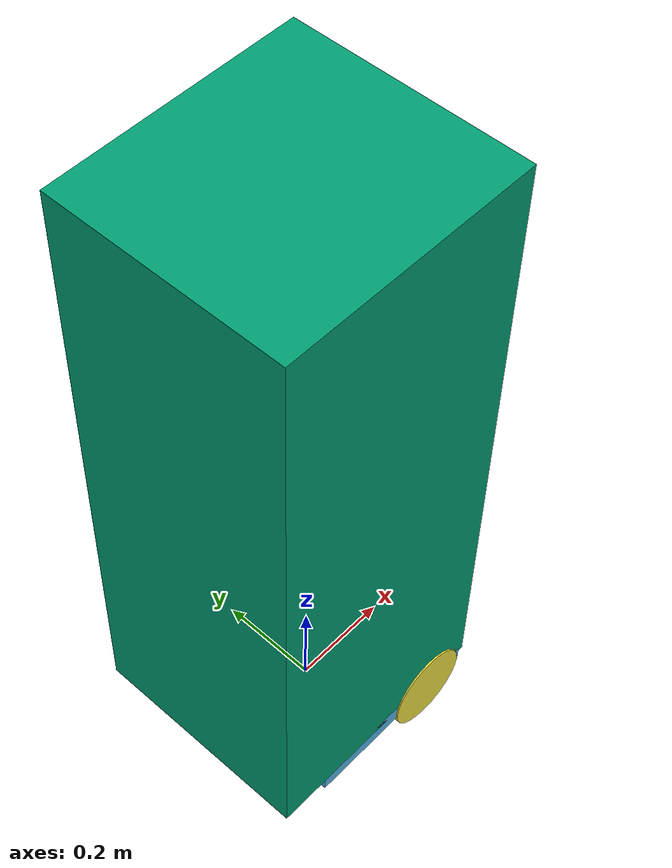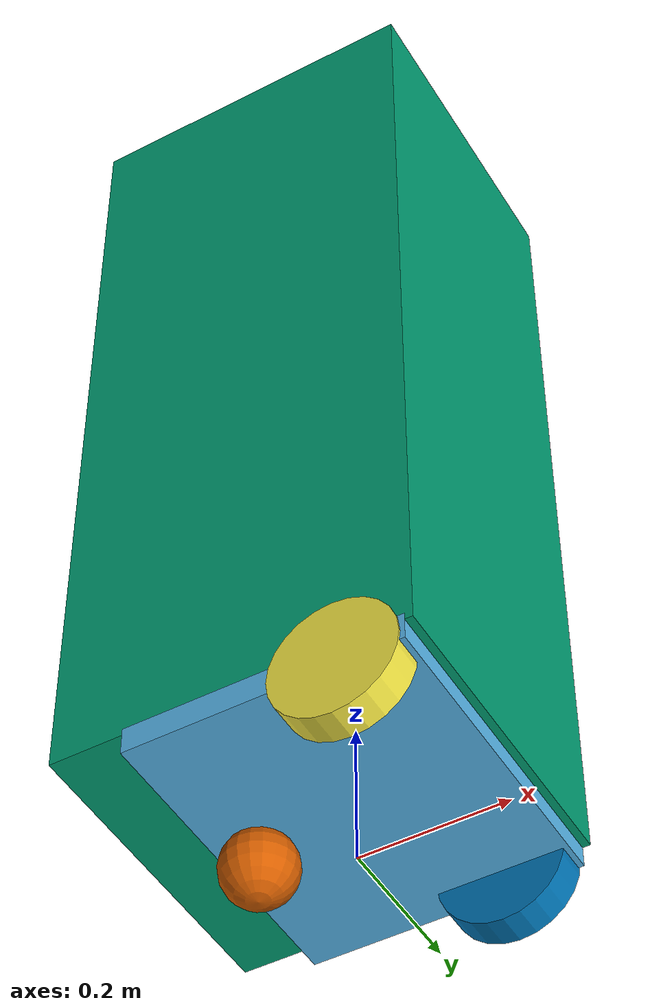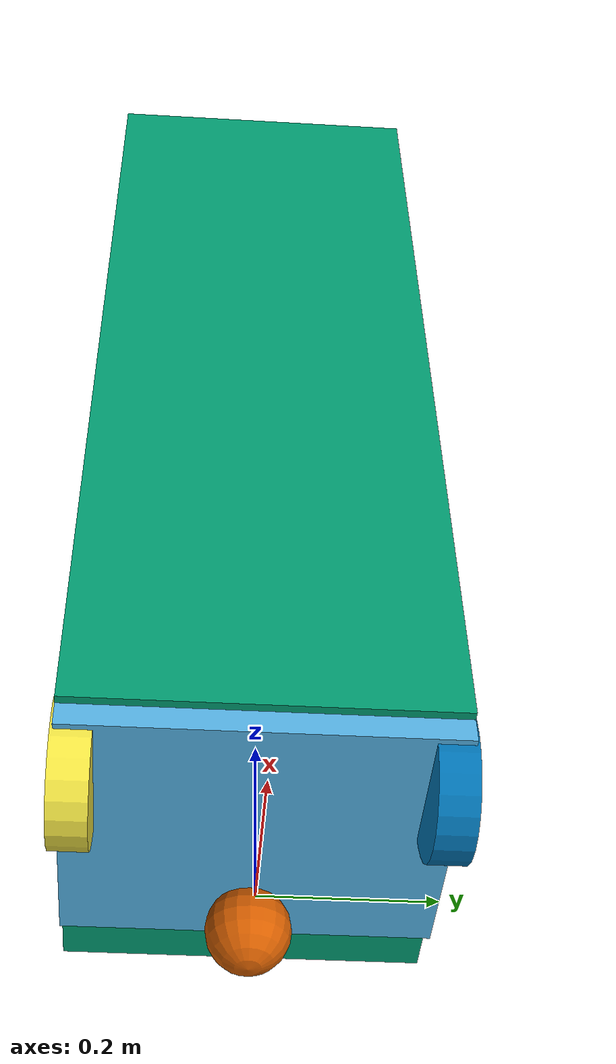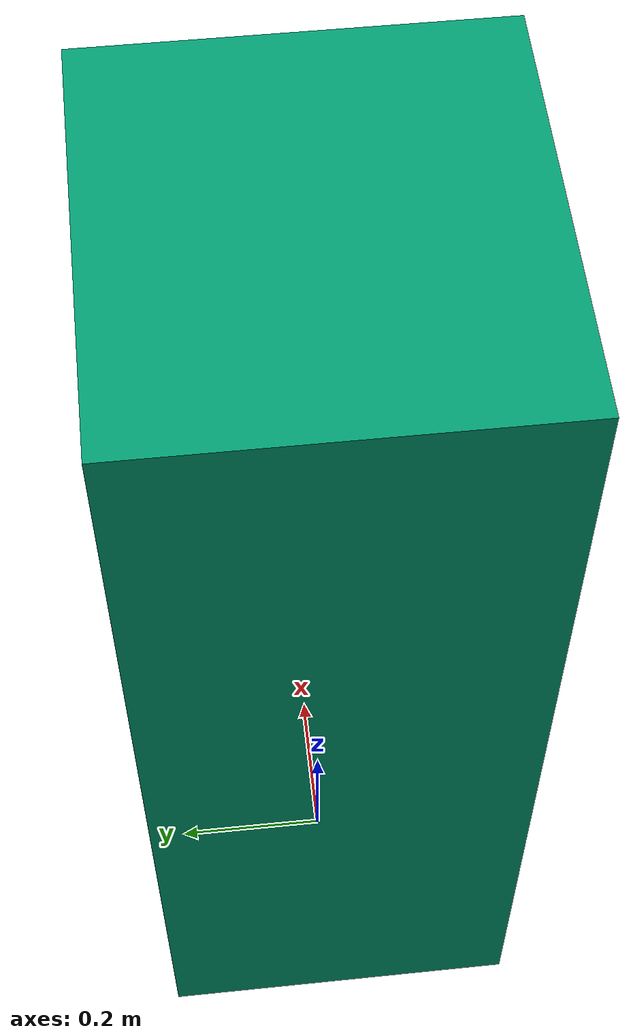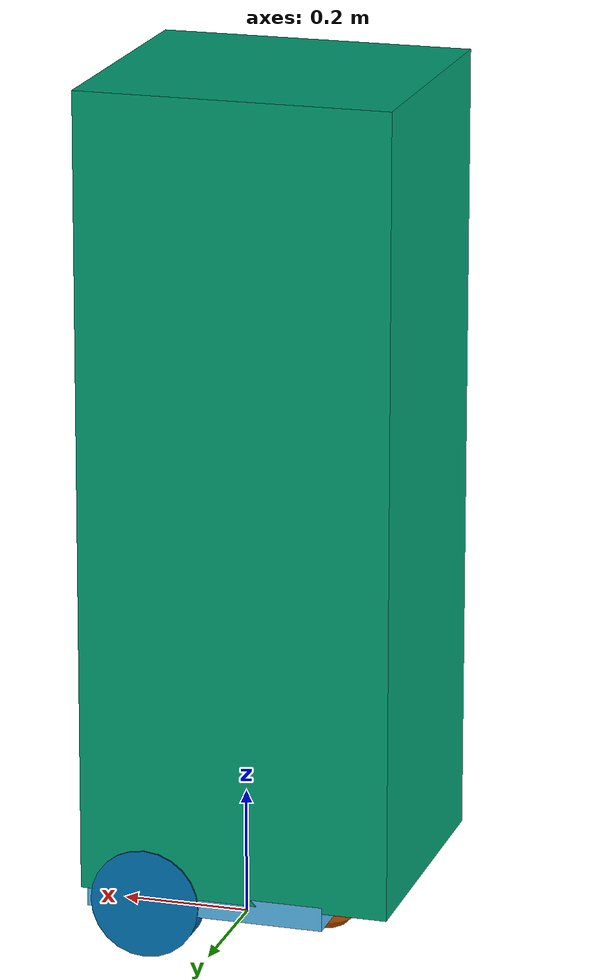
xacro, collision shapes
<?xml version="1.0" ?>
<robot name="sitoe" xmlns:xacro="http://www.ros.org/wiki/xacro">

  <xacro:include filename="inertial_macros.xacro"/>

  <!-- Robot's chassis properties -->
  <xacro:property name="top_chassis_length" value="0.4437"/>
  <xacro:property name="top_chassis_width" value="1.248"/>
  <xacro:property name="top_chassis_height" value="0.4858"/>

  <xacro:property name="bottom_chassis_length" value="0.4437"/>
  <xacro:property name="bottom_chassis_width" value="0.03785"/>
  <xacro:property name="bottom_chassis_height" value="0.3737"/>

  <!-- Robot's wheel properties -->
  <xacro:property name="wheel_radius" value="0.086"/>
  <xacro:property name="wheel_height" value="0.0446"/>
  <xacro:property name="wheel_mass" value="2.2"/>

  <xacro:property name="caster_wheel_radius" value="0.0508"/>

  <!-- Base footprint -->
  <link name="base_footprint"/>

  <joint name="base_joint" type="fixed">
    <parent link="base_footprint"/>
    <child link="base_link"/>
    <origin rpy="0 0 ${pi/2}" xyz="0.0 0.0 0.0381"/>
  </joint>

  <!-- Base link/bottom chassis -->
  <link name="base_link">
    <visual>
      <origin rpy="${pi/2} 0 0" xyz="0.0 0.0 0.0"/>
      <geometry>
        <mesh filename="package://parc_robot_description/meshes/sitoe_chassis_bottom.dae"/>
      </geometry>
    </visual>
    <collision>
      <origin rpy="${pi/2} 0 0" xyz="0.0 0.0 0.0535"/>
      <geometry>
        <box size="${bottom_chassis_length} ${bottom_chassis_width} ${bottom_chassis_height}"/>
      </geometry>
    </collision>

    <xacro:box_inertia mass="7.50" length="${bottom_chassis_length}" width="${bottom_chassis_width}" height="${bottom_chassis_height}">
      <origin rpy="${pi/2} 0 0" xyz="0.0 0.0 0.0535"/>
    </xacro:box_inertia>
  </link>

  <!-- Robot chassis bumper -->
  <gazebo reference="base_link">
    <sensor name="base_collision_sensor" type="contact">
      <contact>
        <collision>base_footprint_fixed_joint_lump__base_link_collision</collision>
        <topic>base_collisions</topic>
      </contact>
      <always_on>true</always_on>
      <update_rate>5</update_rate>
    </sensor>
  </gazebo>

  <!-- Top chassis -->
  <link name="top_chassis_link">
    <visual>
      <origin rpy="${pi/2} 0 0" xyz="0.0 0.0 0.0"/>
      <geometry>
        <mesh filename="package://parc_robot_description/meshes/sitoe_chassis_top.dae"/>
      </geometry>
    </visual>
    <collision>
      <origin rpy="${pi/2} 0 0" xyz="0.0 0.0454341 0.68679"/>
      <geometry>
        <box size="${top_chassis_length} ${top_chassis_width} ${top_chassis_height}"/>
      </geometry>
    </collision>

    <xacro:box_inertia mass="7.50" length="${top_chassis_length}" width="${top_chassis_width}" height="${top_chassis_height}">
      <origin rpy="${pi/2} 0 0" xyz="0.0 0.0454341 0.68679"/>
    </xacro:box_inertia>
  </link>

  <!-- Top chassis bumper -->
  <gazebo reference="top_chassis_link">
    <sensor name="top_chassis_collision_sensor" type="contact">
      <contact>
        <collision>base_footprint_fixed_joint_lump__top_chassis_link_collision_2</collision>
        <topic>top_chassis_collisions</topic>
      </contact>
      <always_on>true</always_on>
      <update_rate>5</update_rate>
    </sensor>
  </gazebo>

  <joint name="chassis_joint" type="fixed">
    <parent link="base_link"/>
    <child link="top_chassis_link"/>
    <origin rpy="0 0 0" xyz="0.0 0.0 0.0"/>
  </joint>

  <!-- Right wheel -->
  <link name="right_wheel_link">
    <visual>
      <origin rpy="0 -${pi/2} 0" xyz="0.0956 -0.0435 0.19096"/> <!-- up, forward, sideways-->
      <geometry>
        <mesh filename="package://parc_robot_description/meshes/right_wheel.dae"/>
      </geometry>
    </visual>
    <collision>
      <origin rpy="0 0 0" xyz="0.0 0.0 -0.006"/>
      <geometry>
        <cylinder length="${wheel_height}" radius="${wheel_radius}"/>
      </geometry>
    </collision>

    <xacro:cylinder_inertia mass="${wheel_mass}" length="${wheel_height}" radius="${wheel_radius}">
      <origin rpy="0 0 0" xyz="0.0 0.0 -0.006"/>
    </xacro:cylinder_inertia>
  </link>

  <!-- Right wheel bumper -->
  <gazebo reference="right_wheel_link">
    <sensor name="right_wheel_collision_sensor" type="contact">
      <contact>
        <collision>right_wheel_link_collision</collision>
        <topic>right_wheel_collisions</topic>
      </contact>
      <always_on>true</always_on>
      <update_rate>5</update_rate>
    </sensor>
  </gazebo>

  <joint name="right_wheel_joint" type="continuous">
    <parent link="base_link"/>
    <child link="right_wheel_link"/>
    <origin rpy="0 ${pi/2} 0" xyz="-0.19649 -0.095 0.0476"/>
    <axis xyz="0 0 1"/>
  </joint>

  <!-- Left wheel -->
  <link name="left_wheel_link">
    <visual>
      <origin rpy="0 ${pi/2} 0" xyz="-0.0956 -0.0435 0.19096"/> <!-- up, forward, sideways-->
      <geometry>
        <mesh filename="package://parc_robot_description/meshes/left_wheel.dae"/>
      </geometry>
    </visual>
    <collision>
      <origin rpy="0 0 0" xyz="0.0 0.0 -0.006"/>
      <geometry>
        <cylinder length="${wheel_height}" radius="${wheel_radius}"/>
      </geometry>
    </collision>

    <xacro:cylinder_inertia mass="${wheel_mass}" length="${wheel_height}" radius="${wheel_radius}">
      <origin rpy="0 0 0" xyz="0.0 0.0 -0.006"/>
    </xacro:cylinder_inertia>
  </link>

  <!-- Left wheel bumper -->
  <gazebo reference="left_wheel_link">
    <sensor name="left_wheel_collision_sensor" type="contact">
      <contact>
        <collision>left_wheel_link_collision</collision>
        <topic>left_wheel_collisions</topic>
      </contact>
      <always_on>true</always_on>
      <update_rate>5</update_rate>
    </sensor>
  </gazebo>

  <joint name="left_wheel_joint" type="continuous">
    <parent link="base_link"/>
    <child link="left_wheel_link"/>
    <origin rpy="0 -${pi/2} 0" xyz="0.19649 -0.095 0.0476"/>
    <axis xyz="0 0 -1"/>
  </joint>

  <!-- Caster wheel -->
  <link name="caster_wheel_link">
    <visual>
      <origin rpy="${pi/2} 0 ${pi/2}" xyz="0.133 0.0 0.0"/>
      <geometry>
        <mesh filename="package://parc_robot_description/meshes/caster_wheel.dae"/>
      </geometry>
    </visual>
    <collision>
      <origin xyz="0.0 0.0 0.0026" rpy="0 0 0"/>
      <geometry>
        <sphere radius="${caster_wheel_radius}"/>
      </geometry>
    </collision>

    <xacro:sphere_inertia mass="0.45" radius="${caster_wheel_radius}">
      <origin rpy="0 0 0" xyz="0.0 0.0 0.0"/>
    </xacro:sphere_inertia>
  </link>

  <joint name="caster_wheel_joint" type="fixed">
    <parent link="base_link"/>
    <child link="caster_wheel_link"/>
    <origin rpy="0 0 -${pi/2}" xyz="0.0 0.133 0.0"/>
  </joint>

  <!-- Friction -->
  <gazebo reference="caster_wheel_link">
    <mu1>0.2</mu1>
    <mu2>0.2</mu2>
  </gazebo>

  <gazebo reference="right_wheel_link">
    <mu1>0.9</mu1>
    <mu2>0.7</mu2>
    <kp>10000000.0</kp>
    <kd>0.0</kd>
    <kd>1.0</kd>
    <minDepth>0.001</minDepth>
  </gazebo>

  <gazebo reference="left_wheel_link">
    <mu1>0.9</mu1>
    <mu2>0.7</mu2>
    <kp>10000000.0</kp>
    <kd>0.0</kd>
    <kd>1.0</kd>
    <minDepth>0.001</minDepth>
  </gazebo>

</robot>

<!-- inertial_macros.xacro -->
<robot xmlns:xacro="http://www.ros.org/wiki/xacro">
  <!-- Some standard inertial calculations, obtained from: https://en.wikipedia.org/wiki/List_of_moments_of_inertia -->
  <xacro:macro name="box_inertia" params="mass length width height *origin">
    <inertial>
      <xacro:insert_block name="origin"/>
      <mass value="${mass}"/>
      <inertia ixx="${(mass/12) * (width*width + height*height)}" ixy="0.0" ixz="0.0"
        iyy="${(mass/12) * (length*length + height*height)}" iyz="0.0"
        izz="${(mass/12) * (length*length + width*width)}"/>
    </inertial>
  </xacro:macro>

  <xacro:macro name="sphere_inertia" params="mass radius *origin">
    <inertial>
      <xacro:insert_block name="origin"/>
      <mass value="${mass}"/>
      <inertia ixx="${(2/5) * mass * (radius*radius)}" ixy="0.0" ixz="0.0"
        iyy="${(2/5) * mass * (radius*radius)}" iyz="0.0"
        izz="${(2/5) * mass * (radius*radius)}"/>
    </inertial>
  </xacro:macro>

  <xacro:macro name="cylinder_inertia" params="mass length radius *origin">
    <inertial>
      <xacro:insert_block name="origin"/>
      <mass value="${mass}" />
      <inertia ixx="${(1/12) * mass * (3*radius*radius + length*length)}" ixy="0.0" ixz="0.0"
        iyy="${(1/12) * mass * (3*radius*radius + length*length)}" iyz="0.0"
        izz="${(1/2) * mass * (radius*radius)}" />
    </inertial>
  </xacro:macro>
</robot>
